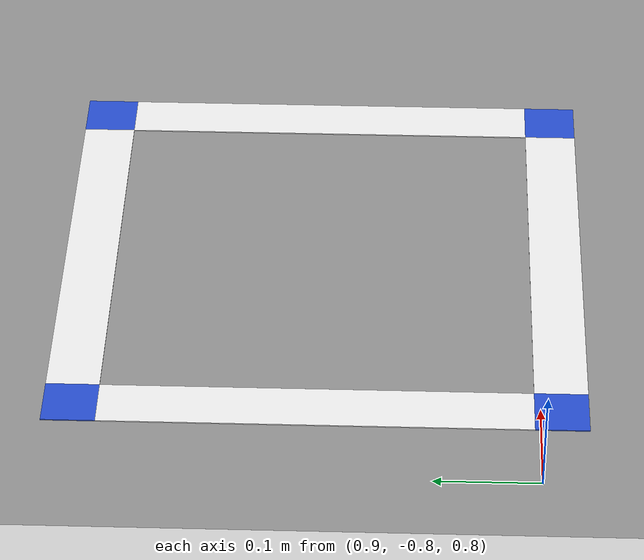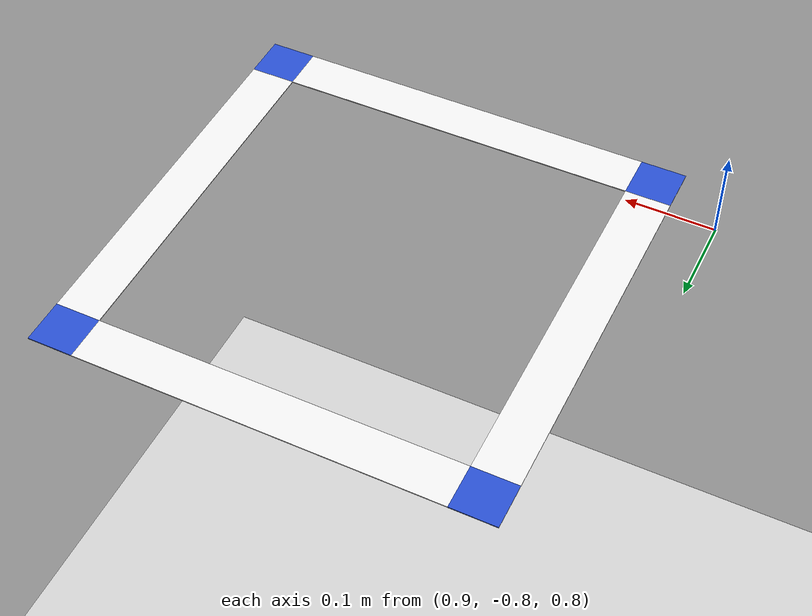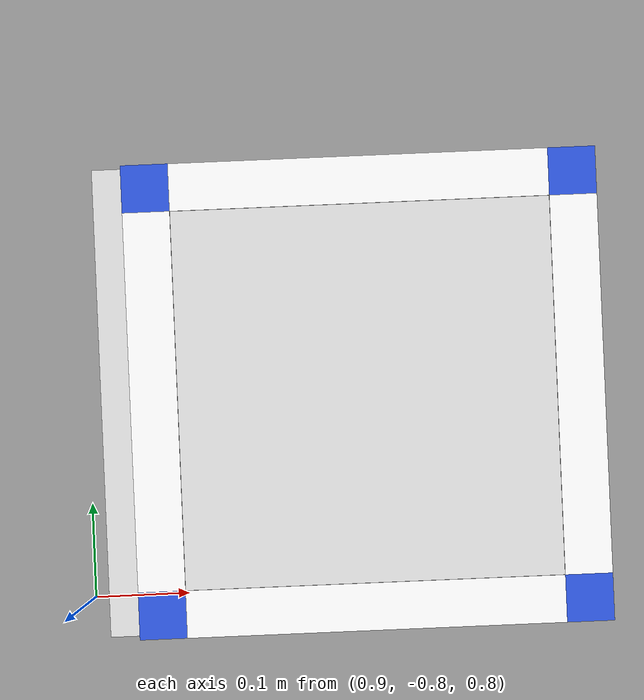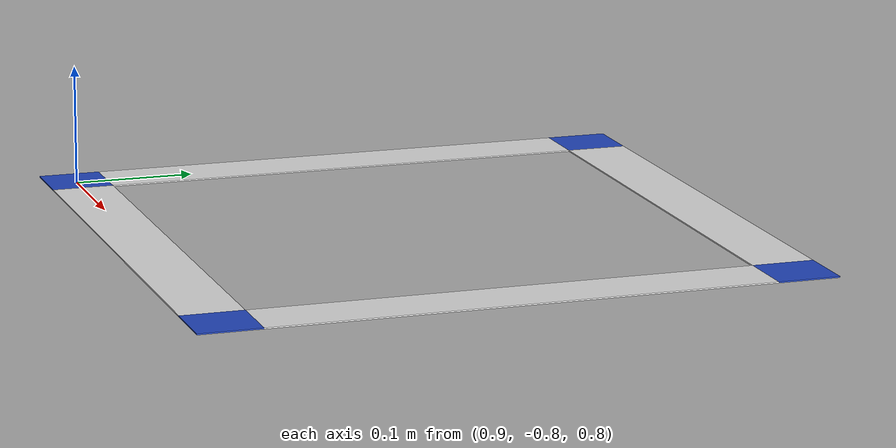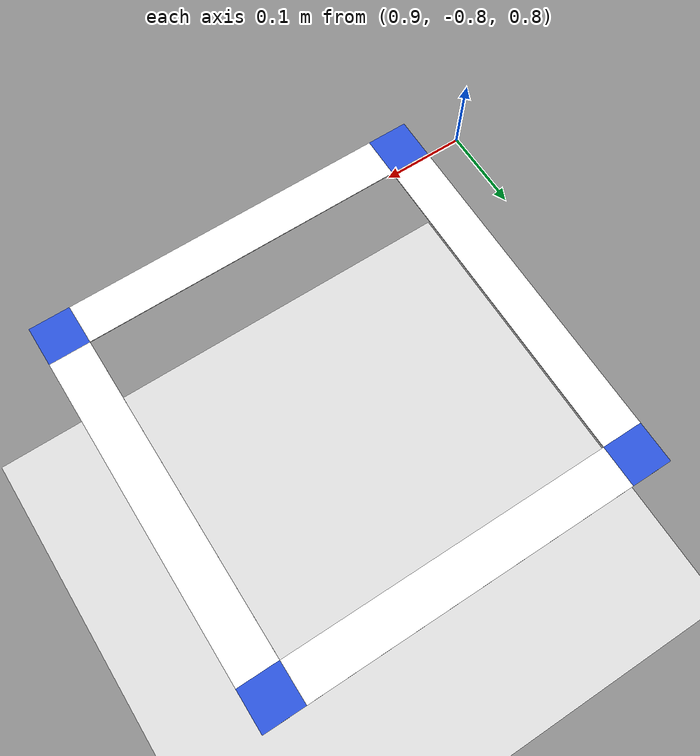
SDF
<sdf version="1.6">
 <world name="Armee">
  <gravity>0 0 -9.81</gravity>
  <physics name="default_physics" default="0" type="ode">
   <max_step_size>0.001</max_step_size>
   <real_time_factor>1</real_time_factor>
   <real_time_update_rate>1000</real_time_update_rate>
  </physics>
  <scene><ambient>0.4 0.4 0.4 1</ambient><background>0.7 0.7 0.7 1</background><shadows>1</shadows></scene>
  <include><uri>model://sun</uri></include>
  <include><uri>model://ground_plane</uri></include>
  <model name="Storage">
   <static>false</static>
   <include><uri>model://Store</uri><pose>1.2 -0.593 0.82 0 0 0</pose></include>
  </model>
 </world>
</sdf>

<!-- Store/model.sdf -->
<sdf version='1.6'>
  <model name='Store'>
    <link name='corner_1'>
      <inertial>
        <mass>1</mass>
        <inertia>
          <ixx>0.166667</ixx>
          <ixy>0</ixy>
          <ixz>0</ixz>
          <iyy>0.166667</iyy>
          <iyz>0</iyz>
          <izz>0.166667</izz>
        </inertia>
        <pose frame=''>0 0 0 0 -0 0</pose>
      </inertial>
      <pose frame=''>-0.225 -0.225 0 0 -0 0</pose>
      <gravity>1</gravity>
      <self_collide>0</self_collide>
      <kinematic>0</kinematic>
      <enable_wind>0</enable_wind>
      <visual name='visual'>
        <pose frame=''>0 0 0 0 -0 0</pose>
        <geometry>
          <box>
            <size>0.05 0.05 0.001</size>
          </box>
        </geometry>
        <material>
          <lighting>1</lighting>
          <script>
            <uri>file://media/materials/scripts/gazebo.material</uri>
            <name>Gazebo/Blue</name>
          </script>
          <shader type='vertex'>
            <normal_map>__default__</normal_map>
          </shader>
        </material>
        <transparency>0</transparency>
        <cast_shadows>1</cast_shadows>
      </visual>
      <collision name='collision'>
        <laser_retro>0</laser_retro>
        <max_contacts>10</max_contacts>
        <pose frame=''>0 0 0 0 -0 0</pose>
        <geometry>
          <box>
            <size>0.05 0.05 0.001</size>
          </box>
        </geometry>
        <surface>
          <friction>
            <ode>
              <mu>1</mu>
              <mu2>1</mu2>
              <fdir1>0 0 0</fdir1>
              <slip1>0</slip1>
              <slip2>0</slip2>
            </ode>
            <torsional>
              <coefficient>1</coefficient>
              <patch_radius>0</patch_radius>
              <surface_radius>0</surface_radius>
              <use_patch_radius>1</use_patch_radius>
              <ode>
                <slip>0</slip>
              </ode>
            </torsional>
          </friction>
          <bounce>
            <restitution_coefficient>0</restitution_coefficient>
            <threshold>1e+06</threshold>
          </bounce>
          <contact>
            <collide_without_contact>0</collide_without_contact>
            <collide_without_contact_bitmask>1</collide_without_contact_bitmask>
            <collide_bitmask>1</collide_bitmask>
            <ode>
              <soft_cfm>0</soft_cfm>
              <soft_erp>0.2</soft_erp>
              <kp>1e+13</kp>
              <kd>1</kd>
              <max_vel>0.01</max_vel>
              <min_depth>0</min_depth>
            </ode>
            <bullet>
              <split_impulse>1</split_impulse>
              <split_impulse_penetration_threshold>-0.01</split_impulse_penetration_threshold>
              <soft_cfm>0</soft_cfm>
              <soft_erp>0.2</soft_erp>
              <kp>1e+13</kp>
              <kd>1</kd>
            </bullet>
          </contact>
        </surface>
      </collision>
    </link>
    <link name='corner_2'>
      <inertial>
        <mass>1</mass>
        <inertia>
          <ixx>0.166667</ixx>
          <ixy>0</ixy>
          <ixz>0</ixz>
          <iyy>0.166667</iyy>
          <iyz>0</iyz>
          <izz>0.166667</izz>
        </inertia>
        <pose frame=''>0 0 0 0 -0 0</pose>
      </inertial>
      <pose frame=''>0.225 -0.225 0 0 -0 0</pose>
      <gravity>1</gravity>
      <self_collide>0</self_collide>
      <kinematic>0</kinematic>
      <enable_wind>0</enable_wind>
      <visual name='visual'>
        <pose frame=''>0 0 0 0 -0 0</pose>
        <geometry>
          <box>
            <size>0.05 0.05 0.001</size>
          </box>
        </geometry>
        <material>
          <lighting>1</lighting>
          <script>
            <uri>file://media/materials/scripts/gazebo.material</uri>
            <name>Gazebo/Blue</name>
          </script>
          <shader type='vertex'>
            <normal_map>__default__</normal_map>
          </shader>
        </material>
        <transparency>0</transparency>
        <cast_shadows>1</cast_shadows>
      </visual>
      <collision name='collision'>
        <laser_retro>0</laser_retro>
        <max_contacts>10</max_contacts>
        <pose frame=''>0 0 0 0 -0 0</pose>
        <geometry>
          <box>
            <size>0.05 0.05 0.001</size>
          </box>
        </geometry>
        <surface>
          <friction>
            <ode>
              <mu>1</mu>
              <mu2>1</mu2>
              <fdir1>0 0 0</fdir1>
              <slip1>0</slip1>
              <slip2>0</slip2>
            </ode>
            <torsional>
              <coefficient>1</coefficient>
              <patch_radius>0</patch_radius>
              <surface_radius>0</surface_radius>
              <use_patch_radius>1</use_patch_radius>
              <ode>
                <slip>0</slip>
              </ode>
            </torsional>
          </friction>
          <bounce>
            <restitution_coefficient>0</restitution_coefficient>
            <threshold>1e+06</threshold>
          </bounce>
          <contact>
            <collide_without_contact>0</collide_without_contact>
            <collide_without_contact_bitmask>1</collide_without_contact_bitmask>
            <collide_bitmask>1</collide_bitmask>
            <ode>
              <soft_cfm>0</soft_cfm>
              <soft_erp>0.2</soft_erp>
              <kp>1e+13</kp>
              <kd>1</kd>
              <max_vel>0.01</max_vel>
              <min_depth>0</min_depth>
            </ode>
            <bullet>
              <split_impulse>1</split_impulse>
              <split_impulse_penetration_threshold>-0.01</split_impulse_penetration_threshold>
              <soft_cfm>0</soft_cfm>
              <soft_erp>0.2</soft_erp>
              <kp>1e+13</kp>
              <kd>1</kd>
            </bullet>
          </contact>
        </surface>
      </collision>
    </link>
    <link name='corner_3'>
      <inertial>
        <mass>1</mass>
        <inertia>
          <ixx>0.166667</ixx>
          <ixy>0</ixy>
          <ixz>0</ixz>
          <iyy>0.166667</iyy>
          <iyz>0</iyz>
          <izz>0.166667</izz>
        </inertia>
        <pose frame=''>0 0 0 0 -0 0</pose>
      </inertial>
      <pose frame=''>0.225 0.225 0 0 -0 0</pose>
      <gravity>1</gravity>
      <self_collide>0</self_collide>
      <kinematic>0</kinematic>
      <enable_wind>0</enable_wind>
      <visual name='visual'>
        <pose frame=''>0 0 0 0 -0 0</pose>
        <geometry>
          <box>
            <size>0.05 0.05 0.001</size>
          </box>
        </geometry>
        <material>
          <lighting>1</lighting>
          <script>
            <uri>file://media/materials/scripts/gazebo.material</uri>
            <name>Gazebo/Blue</name>
          </script>
          <shader type='vertex'>
            <normal_map>__default__</normal_map>
          </shader>
        </material>
        <transparency>0</transparency>
        <cast_shadows>1</cast_shadows>
      </visual>
      <collision name='collision'>
        <laser_retro>0</laser_retro>
        <max_contacts>10</max_contacts>
        <pose frame=''>0 0 0 0 -0 0</pose>
        <geometry>
          <box>
            <size>0.05 0.05 0.001</size>
          </box>
        </geometry>
        <surface>
          <friction>
            <ode>
              <mu>1</mu>
              <mu2>1</mu2>
              <fdir1>0 0 0</fdir1>
              <slip1>0</slip1>
              <slip2>0</slip2>
            </ode>
            <torsional>
              <coefficient>1</coefficient>
              <patch_radius>0</patch_radius>
              <surface_radius>0</surface_radius>
              <use_patch_radius>1</use_patch_radius>
              <ode>
                <slip>0</slip>
              </ode>
            </torsional>
          </friction>
          <bounce>
            <restitution_coefficient>0</restitution_coefficient>
            <threshold>1e+06</threshold>
          </bounce>
          <contact>
            <collide_without_contact>0</collide_without_contact>
            <collide_without_contact_bitmask>1</collide_without_contact_bitmask>
            <collide_bitmask>1</collide_bitmask>
            <ode>
              <soft_cfm>0</soft_cfm>
              <soft_erp>0.2</soft_erp>
              <kp>1e+13</kp>
              <kd>1</kd>
              <max_vel>0.01</max_vel>
              <min_depth>0</min_depth>
            </ode>
            <bullet>
              <split_impulse>1</split_impulse>
              <split_impulse_penetration_threshold>-0.01</split_impulse_penetration_threshold>
              <soft_cfm>0</soft_cfm>
              <soft_erp>0.2</soft_erp>
              <kp>1e+13</kp>
              <kd>1</kd>
            </bullet>
          </contact>
        </surface>
      </collision>
    </link>
    <link name='corner_4'>
      <inertial>
        <mass>1</mass>
        <inertia>
          <ixx>0.166667</ixx>
          <ixy>0</ixy>
          <ixz>0</ixz>
          <iyy>0.166667</iyy>
          <iyz>0</iyz>
          <izz>0.166667</izz>
        </inertia>
        <pose frame=''>0 0 0 0 -0 0</pose>
      </inertial>
      <pose frame=''>-0.225 0.225 0 0 -0 0</pose>
      <gravity>1</gravity>
      <self_collide>0</self_collide>
      <kinematic>0</kinematic>
      <enable_wind>0</enable_wind>
      <visual name='visual'>
        <pose frame=''>0 0 0 0 -0 0</pose>
        <geometry>
          <box>
            <size>0.05 0.05 0.001</size>
          </box>
        </geometry>
        <material>
          <lighting>1</lighting>
          <script>
            <uri>file://media/materials/scripts/gazebo.material</uri>
            <name>Gazebo/Blue</name>
          </script>
          <shader type='vertex'>
            <normal_map>__default__</normal_map>
          </shader>
        </material>
        <transparency>0</transparency>
        <cast_shadows>1</cast_shadows>
      </visual>
      <collision name='collision'>
        <laser_retro>0</laser_retro>
        <max_contacts>10</max_contacts>
        <pose frame=''>0 0 0 0 -0 0</pose>
        <geometry>
          <box>
            <size>0.05 0.05 0.001</size>
          </box>
        </geometry>
        <surface>
          <friction>
            <ode>
              <mu>1</mu>
              <mu2>1</mu2>
              <fdir1>0 0 0</fdir1>
              <slip1>0</slip1>
              <slip2>0</slip2>
            </ode>
            <torsional>
              <coefficient>1</coefficient>
              <patch_radius>0</patch_radius>
              <surface_radius>0</surface_radius>
              <use_patch_radius>1</use_patch_radius>
              <ode>
                <slip>0</slip>
              </ode>
            </torsional>
          </friction>
          <bounce>
            <restitution_coefficient>0</restitution_coefficient>
            <threshold>1e+06</threshold>
          </bounce>
          <contact>
            <collide_without_contact>0</collide_without_contact>
            <collide_without_contact_bitmask>1</collide_without_contact_bitmask>
            <collide_bitmask>1</collide_bitmask>
            <ode>
              <soft_cfm>0</soft_cfm>
              <soft_erp>0.2</soft_erp>
              <kp>1e+13</kp>
              <kd>1</kd>
              <max_vel>0.01</max_vel>
              <min_depth>0</min_depth>
            </ode>
            <bullet>
              <split_impulse>1</split_impulse>
              <split_impulse_penetration_threshold>-0.01</split_impulse_penetration_threshold>
              <soft_cfm>0</soft_cfm>
              <soft_erp>0.2</soft_erp>
              <kp>1e+13</kp>
              <kd>1</kd>
            </bullet>
          </contact>
        </surface>
      </collision>
    </link>
    <link name='wall_1'>
      <inertial>
        <mass>1</mass>
        <inertia>
          <ixx>0.166667</ixx>
          <ixy>0</ixy>
          <ixz>0</ixz>
          <iyy>0.166667</iyy>
          <iyz>0</iyz>
          <izz>0.166667</izz>
        </inertia>
        <pose frame=''>0 0 0 0 -0 0</pose>
      </inertial>
      <pose frame=''>0 -0.225 0 0 -0 0</pose>
      <gravity>1</gravity>
      <self_collide>0</self_collide>
      <kinematic>0</kinematic>
      <enable_wind>0</enable_wind>
      <visual name='visual'>
        <pose frame=''>0 0 0 0 -0 0</pose>
        <geometry>
          <box>
            <size>0.4 0.05 0.001</size>
          </box>
        </geometry>
        <material>
          <lighting>1</lighting>
          <script>
            <uri>file://media/materials/scripts/gazebo.material</uri>
            <name>Gazebo/White</name>
          </script>
          <shader type='vertex'>
            <normal_map>__default__</normal_map>
          </shader>
        </material>
        <transparency>0</transparency>
        <cast_shadows>1</cast_shadows>
      </visual>
      <collision name='collision'>
        <laser_retro>0</laser_retro>
        <max_contacts>10</max_contacts>
        <pose frame=''>0 0 0 0 -0 0</pose>
        <geometry>
          <box>
            <size>0.4 0.05 0.001</size>
          </box>
        </geometry>
        <surface>
          <friction>
            <ode>
              <mu>1</mu>
              <mu2>1</mu2>
              <fdir1>0 0 0</fdir1>
              <slip1>0</slip1>
              <slip2>0</slip2>
            </ode>
            <torsional>
              <coefficient>1</coefficient>
              <patch_radius>0</patch_radius>
              <surface_radius>0</surface_radius>
              <use_patch_radius>1</use_patch_radius>
              <ode>
                <slip>0</slip>
              </ode>
            </torsional>
          </friction>
          <bounce>
            <restitution_coefficient>0</restitution_coefficient>
            <threshold>1e+06</threshold>
          </bounce>
          <contact>
            <collide_without_contact>0</collide_without_contact>
            <collide_without_contact_bitmask>1</collide_without_contact_bitmask>
            <collide_bitmask>1</collide_bitmask>
            <ode>
              <soft_cfm>0</soft_cfm>
              <soft_erp>0.2</soft_erp>
              <kp>1e+13</kp>
              <kd>1</kd>
              <max_vel>0.01</max_vel>
              <min_depth>0</min_depth>
            </ode>
            <bullet>
              <split_impulse>1</split_impulse>
              <split_impulse_penetration_threshold>-0.01</split_impulse_penetration_threshold>
              <soft_cfm>0</soft_cfm>
              <soft_erp>0.2</soft_erp>
              <kp>1e+13</kp>
              <kd>1</kd>
            </bullet>
          </contact>
        </surface>
      </collision>
    </link>
    <link name='wall_2'>
      <inertial>
        <mass>1</mass>
        <inertia>
          <ixx>0.166667</ixx>
          <ixy>0</ixy>
          <ixz>0</ixz>
          <iyy>0.166667</iyy>
          <iyz>0</iyz>
          <izz>0.166667</izz>
        </inertia>
        <pose frame=''>0 0 0 0 -0 0</pose>
      </inertial>
      <pose frame=''>0 0.225 0 0 -0 0</pose>
      <gravity>1</gravity>
      <self_collide>0</self_collide>
      <kinematic>0</kinematic>
      <enable_wind>0</enable_wind>
      <visual name='visual'>
        <pose frame=''>0 0 0 0 -0 0</pose>
        <geometry>
          <box>
            <size>0.4 0.05 0.001</size>
          </box>
        </geometry>
        <material>
          <lighting>1</lighting>
          <script>
            <uri>file://media/materials/scripts/gazebo.material</uri>
            <name>Gazebo/White</name>
          </script>
          <shader type='vertex'>
            <normal_map>__default__</normal_map>
          </shader>
        </material>
        <transparency>0</transparency>
        <cast_shadows>1</cast_shadows>
      </visual>
      <collision name='collision'>
        <laser_retro>0</laser_retro>
        <max_contacts>10</max_contacts>
        <pose frame=''>0 0 0 0 -0 0</pose>
        <geometry>
          <box>
            <size>0.4 0.05 0.001</size>
          </box>
        </geometry>
        <surface>
          <friction>
            <ode>
              <mu>1</mu>
              <mu2>1</mu2>
              <fdir1>0 0 0</fdir1>
              <slip1>0</slip1>
              <slip2>0</slip2>
            </ode>
            <torsional>
              <coefficient>1</coefficient>
              <patch_radius>0</patch_radius>
              <surface_radius>0</surface_radius>
              <use_patch_radius>1</use_patch_radius>
              <ode>
                <slip>0</slip>
              </ode>
            </torsional>
          </friction>
          <bounce>
            <restitution_coefficient>0</restitution_coefficient>
            <threshold>1e+06</threshold>
          </bounce>
          <contact>
            <collide_without_contact>0</collide_without_contact>
            <collide_without_contact_bitmask>1</collide_without_contact_bitmask>
            <collide_bitmask>1</collide_bitmask>
            <ode>
              <soft_cfm>0</soft_cfm>
              <soft_erp>0.2</soft_erp>
              <kp>1e+13</kp>
              <kd>1</kd>
              <max_vel>0.01</max_vel>
              <min_depth>0</min_depth>
            </ode>
            <bullet>
              <split_impulse>1</split_impulse>
              <split_impulse_penetration_threshold>-0.01</split_impulse_penetration_threshold>
              <soft_cfm>0</soft_cfm>
              <soft_erp>0.2</soft_erp>
              <kp>1e+13</kp>
              <kd>1</kd>
            </bullet>
          </contact>
        </surface>
      </collision>
    </link>
    <link name='wall_3'>
      <inertial>
        <mass>1</mass>
        <inertia>
          <ixx>0.166667</ixx>
          <ixy>0</ixy>
          <ixz>0</ixz>
          <iyy>0.166667</iyy>
          <iyz>0</iyz>
          <izz>0.166667</izz>
        </inertia>
        <pose frame=''>0 0 0 0 -0 0</pose>
      </inertial>
      <pose frame=''>-0.225 0 0 0 -0 0</pose>
      <gravity>1</gravity>
      <self_collide>0</self_collide>
      <kinematic>0</kinematic>
      <enable_wind>0</enable_wind>
      <visual name='visual'>
        <pose frame=''>0 0 0 0 -0 0</pose>
        <geometry>
          <box>
            <size>0.05 0.4 0.001</size>
          </box>
        </geometry>
        <material>
          <lighting>1</lighting>
          <script>
            <uri>file://media/materials/scripts/gazebo.material</uri>
            <name>Gazebo/White</name>
          </script>
          <shader type='vertex'>
            <normal_map>__default__</normal_map>
          </shader>
        </material>
        <transparency>0</transparency>
        <cast_shadows>1</cast_shadows>
      </visual>
      <collision name='collision'>
        <laser_retro>0</laser_retro>
        <max_contacts>10</max_contacts>
        <pose frame=''>0 0 0 0 -0 0</pose>
        <geometry>
          <box>
            <size>0.05 0.4 0.001</size>
          </box>
        </geometry>
        <surface>
          <friction>
            <ode>
              <mu>1</mu>
              <mu2>1</mu2>
              <fdir1>0 0 0</fdir1>
              <slip1>0</slip1>
              <slip2>0</slip2>
            </ode>
            <torsional>
              <coefficient>1</coefficient>
              <patch_radius>0</patch_radius>
              <surface_radius>0</surface_radius>
              <use_patch_radius>1</use_patch_radius>
              <ode>
                <slip>0</slip>
              </ode>
            </torsional>
          </friction>
          <bounce>
            <restitution_coefficient>0</restitution_coefficient>
            <threshold>1e+06</threshold>
          </bounce>
          <contact>
            <collide_without_contact>0</collide_without_contact>
            <collide_without_contact_bitmask>1</collide_without_contact_bitmask>
            <collide_bitmask>1</collide_bitmask>
            <ode>
              <soft_cfm>0</soft_cfm>
              <soft_erp>0.2</soft_erp>
              <kp>1e+13</kp>
              <kd>1</kd>
              <max_vel>0.01</max_vel>
              <min_depth>0</min_depth>
            </ode>
            <bullet>
              <split_impulse>1</split_impulse>
              <split_impulse_penetration_threshold>-0.01</split_impulse_penetration_threshold>
              <soft_cfm>0</soft_cfm>
              <soft_erp>0.2</soft_erp>
              <kp>1e+13</kp>
              <kd>1</kd>
            </bullet>
          </contact>
        </surface>
      </collision>
    </link>
    <link name='wall_4'>
      <inertial>
        <mass>1</mass>
        <inertia>
          <ixx>0.166667</ixx>
          <ixy>0</ixy>
          <ixz>0</ixz>
          <iyy>0.166667</iyy>
          <iyz>0</iyz>
          <izz>0.166667</izz>
        </inertia>
        <pose frame=''>0 0 0 0 -0 0</pose>
      </inertial>
      <pose frame=''>0.225 0 0 0 -0 0</pose>
      <gravity>1</gravity>
      <self_collide>0</self_collide>
      <kinematic>0</kinematic>
      <enable_wind>0</enable_wind>
      <visual name='visual'>
        <pose frame=''>0 0 0 0 -0 0</pose>
        <geometry>
          <box>
            <size>0.05 0.4 0.001</size>
          </box>
        </geometry>
        <material>
          <lighting>1</lighting>
          <script>
            <uri>file://media/materials/scripts/gazebo.material</uri>
            <name>Gazebo/White</name>
          </script>
          <shader type='vertex'>
            <normal_map>__default__</normal_map>
          </shader>
        </material>
        <transparency>0</transparency>
        <cast_shadows>1</cast_shadows>
      </visual>
      <collision name='collision'>
        <laser_retro>0</laser_retro>
        <max_contacts>10</max_contacts>
        <pose frame=''>0 0 0 0 -0 0</pose>
        <geometry>
          <box>
            <size>0.05 0.4 0.001</size>
          </box>
        </geometry>
        <surface>
          <friction>
            <ode>
              <mu>1</mu>
              <mu2>1</mu2>
              <fdir1>0 0 0</fdir1>
              <slip1>0</slip1>
              <slip2>0</slip2>
            </ode>
            <torsional>
              <coefficient>1</coefficient>
              <patch_radius>0</patch_radius>
              <surface_radius>0</surface_radius>
              <use_patch_radius>1</use_patch_radius>
              <ode>
                <slip>0</slip>
              </ode>
            </torsional>
          </friction>
          <bounce>
            <restitution_coefficient>0</restitution_coefficient>
            <threshold>1e+06</threshold>
          </bounce>
          <contact>
            <collide_without_contact>0</collide_without_contact>
            <collide_without_contact_bitmask>1</collide_without_contact_bitmask>
            <collide_bitmask>1</collide_bitmask>
            <ode>
              <soft_cfm>0</soft_cfm>
              <soft_erp>0.2</soft_erp>
              <kp>1e+13</kp>
              <kd>1</kd>
              <max_vel>0.01</max_vel>
              <min_depth>0</min_depth>
            </ode>
            <bullet>
              <split_impulse>1</split_impulse>
              <split_impulse_penetration_threshold>-0.01</split_impulse_penetration_threshold>
              <soft_cfm>0</soft_cfm>
              <soft_erp>0.2</soft_erp>
              <kp>1e+13</kp>
              <kd>1</kd>
            </bullet>
          </contact>
        </surface>
      </collision>
    </link>
    <static>0</static>
    <allow_auto_disable>1</allow_auto_disable>
  </model>
</sdf>
